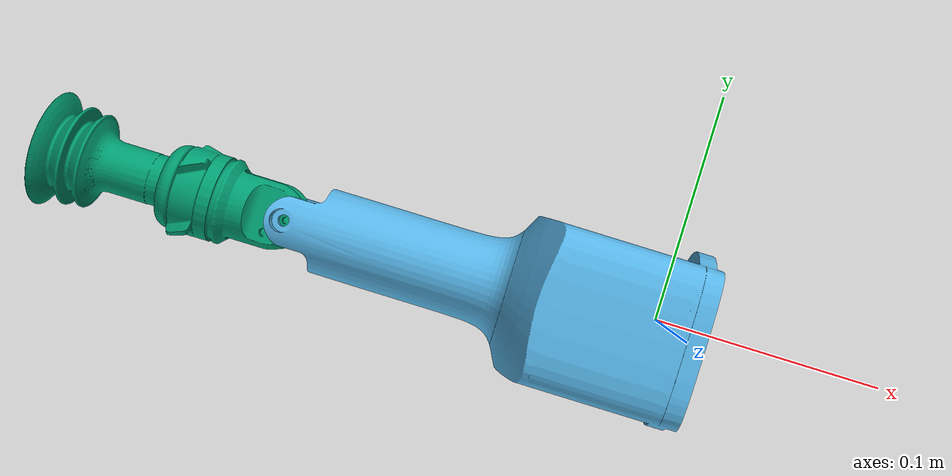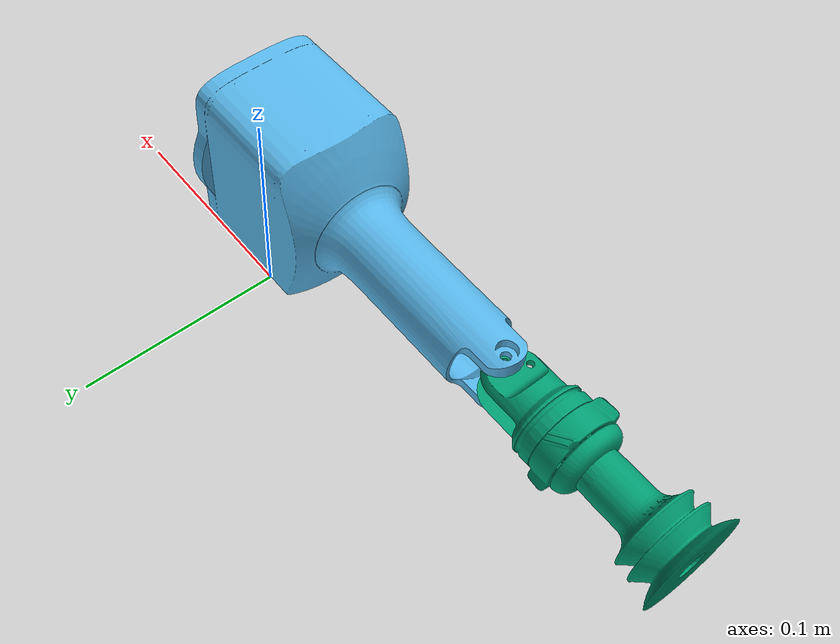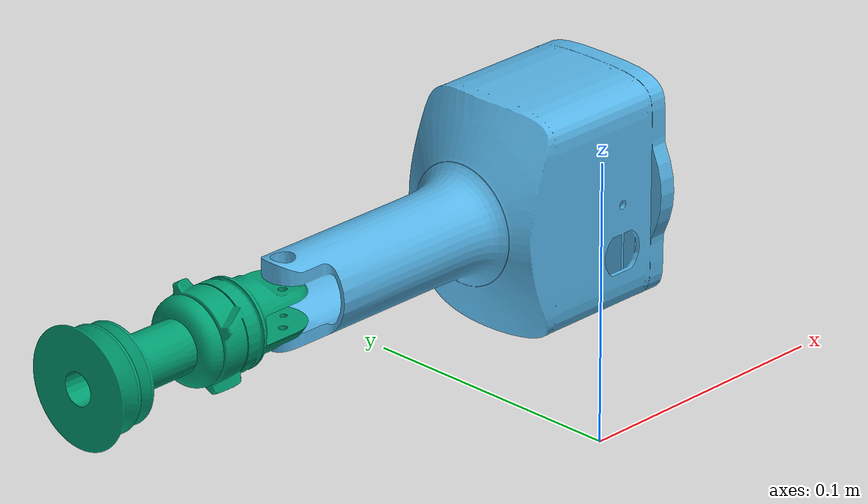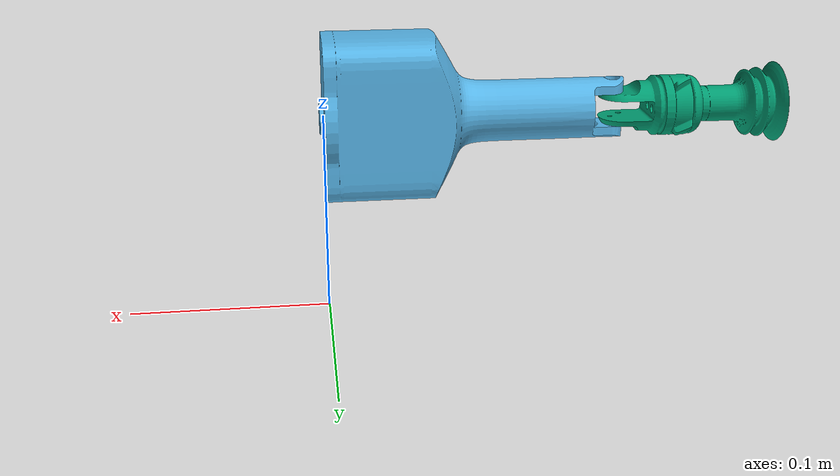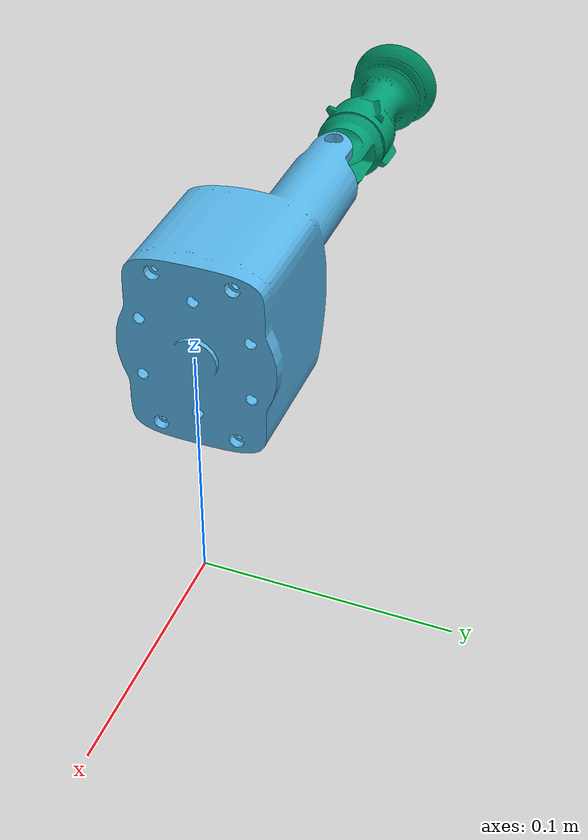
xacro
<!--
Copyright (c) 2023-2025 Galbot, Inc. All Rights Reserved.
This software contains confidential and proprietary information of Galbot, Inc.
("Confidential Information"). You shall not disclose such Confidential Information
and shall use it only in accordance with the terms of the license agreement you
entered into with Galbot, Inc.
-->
<?xml version="1.0"?>
<robot name="test_suction_cup" xmlns:xacro="http://ros.org/wiki/xacro">
    <!-- Include-->
    <xacro:include
        filename="$(find galbot_description)/urdf/galbot_one_charlie/suction_cup/suction_cup.xacro" />
    <!-- Properties -->
    <xacro:property name="M_PI" value="3.1415926535897931" />
    <!-- Parent link -->
    <link name="base_link" />
    <xacro:suction_cup parent="base_link" name="suction_cup">
        <origin xyz="0 0 0.1" rpy="0 0 0" />
    </xacro:suction_cup>
</robot>

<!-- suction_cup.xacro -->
<robot xmlns:xacro="http://www.ros.org/wiki/xacro" name="suction_cup">

  <!-- links and joints -->
  <xacro:macro name="suction_cup" params="parent *origin  name:=suction_cup">
    <xacro:property name="M_PI" value="3.1415926535897931"/>

    <joint name="${name}_joint" type="fixed">
      <xacro:insert_block name="origin"/>
      <parent link="${parent}"/>
      <child link="${name}_base_link"/>
    </joint>

    <link name="${name}_base_link">
      <inertial>
        <origin xyz="-4.0035E-05 -0.00015919 0.065665" rpy="0 0 0"/>
        <mass value="0.36941"/>
        <inertia ixx="0.00014564" ixy="3.5459E-07" ixz="-1.2386E-07" iyy="0.00016918" iyz="-4.0084E-07" izz="0.000219"/>
      </inertial>
      <visual>
        <origin xyz="0 0 0" rpy="0 0 0"/>
        <geometry>
          <mesh filename="package://galbot_one_charlie_description/meshes/suction_cup/suction_cup_base_link.obj"/>
        </geometry>

      </visual>
      <collision>
        <origin xyz="0 0 0" rpy="0 0 0"/>
        <geometry>
          <mesh filename="package://galbot_one_charlie_description/meshes/suction_cup/suction_cup_base_link.stl"/>
        </geometry>
      </collision>
    </link>

    <link name="${name}_link1">
      <inertial>
        <origin xyz="0.037966 -3.0191E-05 -4.2414E-08" rpy="0 0 0"/>
        <mass value="0.063856"/>
        <inertia ixx="7.1717E-06" ixy="1.7711E-08" ixz="-3.6994E-11" iyy="8.0256E-06" iyz="4.7383E-09" izz="7.78E-06"/>
      </inertial>
      <visual>
        <origin xyz="0 0 0" rpy="0 0 0"/>
        <geometry>
          <mesh filename="package://galbot_one_charlie_description/meshes/suction_cup/suction_cup_link1.obj"/>
        </geometry>

      </visual>
      <collision>
        <origin xyz="0 0 0" rpy="0 0 0"/>
        <geometry>
          <mesh filename="package://galbot_one_charlie_description/meshes/suction_cup/suction_cup_link1.stl"/>
        </geometry>
      </collision>
    </link>

    <joint name="${name}_joint1" type="revolute">
      <origin xyz="-0.1428 0 0" rpy="0 0 ${-M_PI/2}"/>
      <parent link="${name}_base_link"/>
      <child link="${name}_link1"/>
      <axis xyz="0 0 1"/>
      <limit lower="0" upper="1.570796327" effort="1" velocity="1.570796327"/>
    </joint>

    <link name="${name}_tcp_link"/>
    <joint name="${name}_tcp_joint" type="fixed">
      <origin xyz="0 -0.079807 0" rpy="${M_PI/2} 0 ${-M_PI/2}"/>
      <parent link="${name}_link1"/>
      <child link="${name}_tcp_link"/>
      <axis xyz="0 0 0"/>
    </joint>

  </xacro:macro>
</robot>
